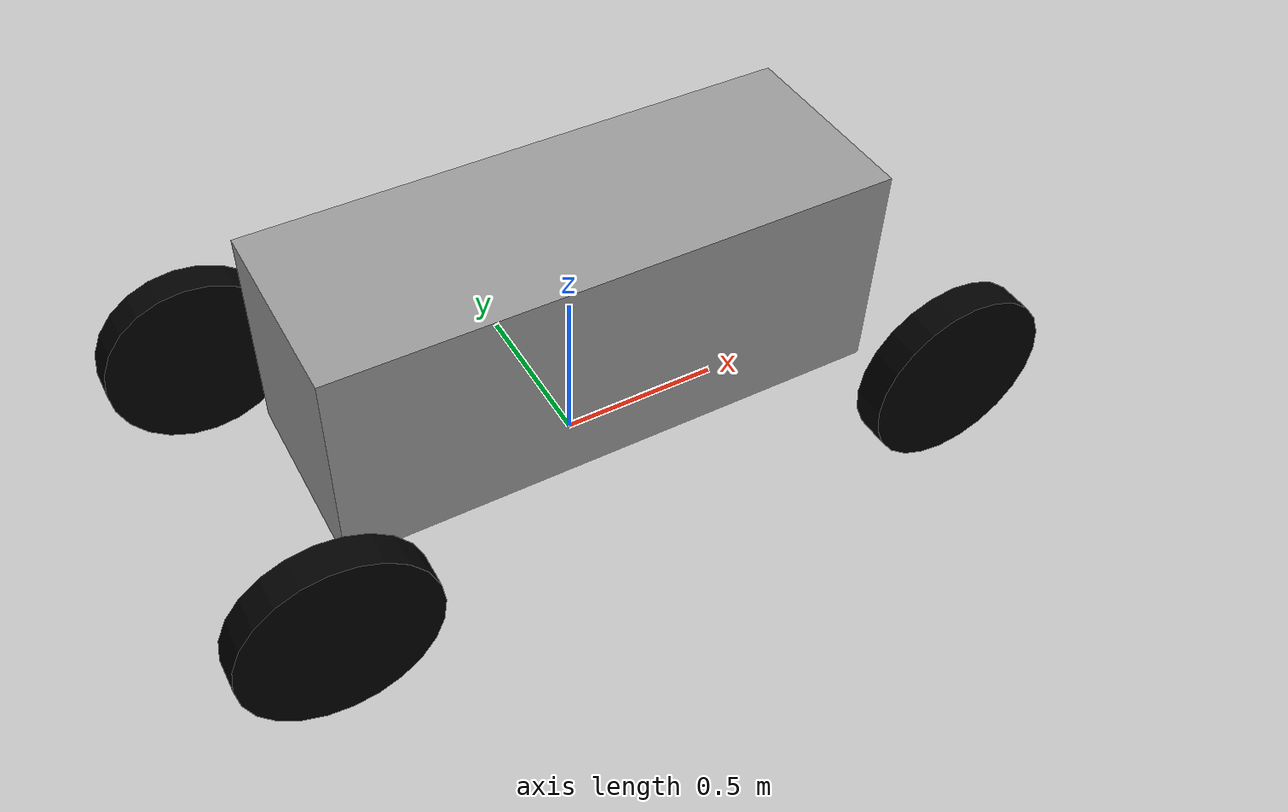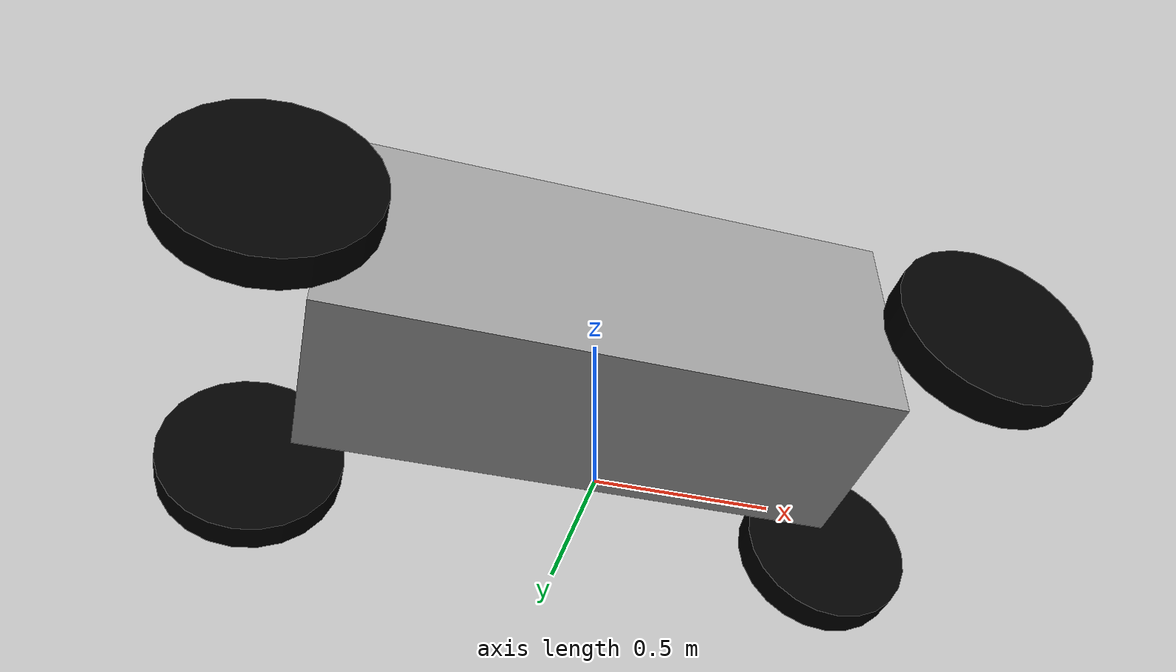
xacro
<?xml version="1.0"?>

<robot name="four_wheel_steering_robot" xmlns:xacro="http://www.ros.org/wiki/xacro">

  <xacro:include filename="$(find four_wheel_steering_controller)/test/urdf/chassis.xacro" />
  <xacro:include filename="$(find four_wheel_steering_controller)/test/urdf/wheel_steered.xacro" />

  <xacro:property name="M_PI" value="3.14159"/>

  <!-- Wheel Mounting Positions -->
  <xacro:property name="ground_clearance" value="0.19" />
  <xacro:property name="wheel_x_offset" value="0.0" />
  <xacro:property name="wheel_y_offset" value="0.0" />
  <!-- value="0.05"  change offset to 0 -->

  <xacro:chassis/>

  <!-- Wheel macros -->
  <xacro:wheel_steered wheel_prefix="front_left" parent_link="base_link" wheel_origin_y="${wheel_y_offset}" left_right="-1">
    <origin xyz="${wheelbase/2+wheel_x_offset} ${track/2-wheel_y_offset} ${-base_z_size/2 + wheel_radius - ground_clearance}" rpy="0 0 0" />
  </xacro:wheel_steered>
  <xacro:wheel_steered wheel_prefix="front_right" parent_link="base_link" wheel_origin_y="${-wheel_y_offset}" left_right="1">
    <origin xyz="${wheelbase/2+wheel_x_offset} ${-track/2+wheel_y_offset} ${-base_z_size/2 + wheel_radius - ground_clearance}" rpy="0 0 0" />
  </xacro:wheel_steered>
  <xacro:wheel_steered wheel_prefix="rear_left" parent_link="base_link" wheel_origin_y="${wheel_y_offset}" left_right="-1">
    <origin xyz="${-wheelbase/2+wheel_x_offset} ${track/2-wheel_y_offset} ${-base_z_size/2 + wheel_radius - ground_clearance}" rpy="0 0 0" />
  </xacro:wheel_steered>
  <xacro:wheel_steered wheel_prefix="rear_right" parent_link="base_link" wheel_origin_y="${-wheel_y_offset}" left_right="1">
    <origin xyz="${-wheelbase/2+wheel_x_offset} ${-track/2+wheel_y_offset} ${-base_z_size/2 + wheel_radius - ground_clearance}" rpy="0 0 0" />
  </xacro:wheel_steered>

  <!-- Gazebo plugin for ROS Control -->

<gazebo>
  <static>false</static>
  <plugin name="gazebo_ros_control" filename="libgazebo_ros_control.so">
    <robotSimType>gazebo_ros_control/DefaultRobotHWSim</robotSimType>
    <legacyModeNS>true</legacyModeNS>
  </plugin>
</gazebo>

</robot>

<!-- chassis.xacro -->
<robot xmlns:xacro="http://www.ros.org/wiki/xacro" name="chassis">
  <!-- Base Properties -->
    <xacro:property name="mass_base" value="10" />
  <xacro:property name="base_x_size" value="1.66000" />
  <xacro:property name="base_y_size" value="0.60000" />
  <xacro:property name="base_z_size" value="0.66000" />

  <xacro:property name="wheelbase" value="1.9" />
  <xacro:property name="track" value="1.1" />

  <xacro:macro name="chassis">
    <!-- Base footprint is on the ground under the robot -->
    <link name="base_footprint"/>

    <gazebo reference="base_link">
      <material>Gazebo/Grey</material>
    </gazebo>
    <!-- Base link is the center of the robot's bottom plate -->
    <link name="base_link">
      <visual>
        <origin xyz="0 0 0" rpy="0 0 0" />
        <geometry>
          <box size="${base_x_size} ${base_y_size} ${base_z_size}"/>
        </geometry>
        <material name="grey">
          <color rgba="0.6 0.6 0.6 1"/>
        </material>
      </visual>
      <collision>
        <geometry>
          <box size="${base_x_size} ${base_y_size} ${base_z_size}"/>
        </geometry>
      </collision>
    </link>
    <joint name="base_footprint_joint" type="fixed">
      <origin xyz="0 0 ${ground_clearance + base_z_size/2}" rpy="0 0 0" />
      <child link="base_link" />
      <parent link="base_footprint" />
    </joint>

    <!-- Interial link stores the robot's inertial information -->
    <link name="inertial_link">
      <inertial>
        <mass value="34" />
        <origin xyz="0 0 0" />
        <inertia ixx="${mass_base/12.0 * (base_y_size*base_y_size + base_z_size*base_z_size)}" ixy="0" ixz="0"
                 iyy="${mass_base/12.0 * (base_x_size*base_x_size + base_z_size*base_z_size)}" iyz="0"
                 izz="${mass_base/12.0 * (base_y_size*base_y_size + base_x_size*base_x_size)}" />
      </inertial>
    </link>

    <joint name="inertial_joint" type="fixed">
      <origin xyz="0 0 0" rpy="0 0 0" />
      <parent link="base_link" />
      <child link="inertial_link" />
    </joint>
  </xacro:macro>
</robot>

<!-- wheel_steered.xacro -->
<robot xmlns:xacro="http://www.ros.org/wiki/xacro" name="wheel_steered">

  <xacro:property name="steering_link_y" value="0.05" />
  <xacro:property name="steering_link_xz" value="0.1" />
  <xacro:property name="steering_link_mass" value="5.0" />

  <xacro:include filename="$(find four_wheel_steering_controller)/test/urdf/wheel.xacro" />

  <xacro:macro name="wheel_steered" params="wheel_prefix parent_link wheel_origin_y left_right *joint_origin ">
    <link name="${wheel_prefix}_steering">
      <visual>
        <origin xyz="0 ${-wheel_origin_y} 0" rpy="0 0 0"/>
        <geometry>
          <box size="0.05 ${steering_link_y} 0.05"/>
        </geometry>
        <material name="blue">
          <color rgba="0.2 0.2 0.6 1"/>
        </material>
      </visual>
      <inertial>
        <mass value="${steering_link_mass}" />
        <origin xyz="0 ${-wheel_origin_y} 0" />
        <inertia  ixx="${steering_link_mass/12.0 * (steering_link_y*steering_link_y + steering_link_xz*steering_link_xz)}" ixy="0" ixz="0"
                  iyy="${steering_link_mass/12.0 * (steering_link_xz*steering_link_xz + steering_link_xz*steering_link_xz)}" iyz="0"
                  izz="${steering_link_mass/12.0 * (steering_link_y*steering_link_y + steering_link_xz*steering_link_xz)}" />
      </inertial>
    </link>

    <joint name="${wheel_prefix}_steering_joint" type="revolute">
      <limit lower="${-M_PI/2}" upper="${M_PI/2}" effort="1000.0" velocity="5.0"/>
      <axis xyz="0 0 1"/>
      <parent link="${parent_link}"/>
      <child link="${wheel_prefix}_steering"/>
      <xacro:insert_block name="joint_origin"/>
    </joint>

    <transmission name="${wheel_prefix}_steering_trans" type="SimpleTransmission">
      <type>transmission_interface/SimpleTransmission</type>
      <actuator name="${wheel_prefix}_steering_motor">
        <hardwareInterface>hardware_interface/PositionJointInterface</hardwareInterface>
        <mechanicalReduction>1</mechanicalReduction>
      </actuator>
      <joint name="${wheel_prefix}_steering_joint">
        <hardwareInterface>hardware_interface/PositionJointInterface</hardwareInterface>
      </joint>
    </transmission>

    <xacro:wheel wheel_prefix="${wheel_prefix}" parent_link="${wheel_prefix}_steering" left_right="${left_right}">
      <origin xyz="0 ${wheel_origin_y} 0" rpy="0 0 0" />
    </xacro:wheel>
  </xacro:macro>

</robot>

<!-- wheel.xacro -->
<robot xmlns:xacro="http://www.ros.org/wiki/xacro" name="wheel">

  <!-- Wheel Properties -->
  <xacro:property name="wheel_length" value="0.1" />
  <xacro:property name="wheel_radius" value="0.28" />
  <xacro:property name="mass_wheel" value="5.0" />

  <xacro:macro name="wheel" params="wheel_prefix parent_link left_right *joint_origin">
    <gazebo reference="${wheel_prefix}_wheel_link">
      <material>Gazebo/Black</material>
    </gazebo>
		<link name="${wheel_prefix}_wheel_link">
			<inertial>
        <mass value="${mass_wheel}" />

				<origin xyz="0 0 0" rpy="0  0 0" />
        <inertia  ixx="${mass_wheel/4.0*(wheel_radius*wheel_radius+wheel_length*wheel_length/3.0)}" ixy="0" ixz="0"
                  iyy="${mass_wheel*wheel_radius*wheel_radius/2.0}" iyz="0"
                  izz="${mass_wheel/4.0*(wheel_radius*wheel_radius+wheel_length*wheel_length/3.0)}" />
      </inertial>
			<visual>
        <origin xyz="0 0 0" rpy="${left_right * M_PI/2}  0 0" />
				<geometry>
          <cylinder length="${wheel_length}" radius="${wheel_radius}"/>
				</geometry>
        <material name="black">
          <color rgba="0 0 0 1"/>
        </material>
			</visual>
			<collision>
				<origin xyz="0 0 0" rpy="${M_PI/2} 0 0" />
				<geometry>
					<cylinder length="${wheel_length}" radius="${wheel_radius}" />
				</geometry>
			</collision>
		</link>

<!--  do not use physical param    -->

		<gazebo reference="${wheel_prefix}_wheel_link">
			<mu1 value="1.0"/>
			<mu2 value="1.0"/>
			<kp value="10000000.0" />
			<kd value="1.0" />
			<fdir1 value="1 0 0"/>
		</gazebo>

		<physics type="ode">
			<gravity xyz="0 0 -9.8"/>
			<ode>
				<solver type="quick" dt="0.0001" iters="1000" sor="1.3"/>
				<constraints cfm="0.0" erp="0.1" contact_max_correcting_vel="10.0" contact_surface_layer="0.001"/>
			</ode>
		</physics>

		<joint name="${wheel_prefix}_wheel" type="continuous">
      <parent link="${parent_link}"/>
			<child link="${wheel_prefix}_wheel_link"/>
      <xacro:insert_block name="joint_origin"/>
			<axis xyz="0 1 0" rpy="0 0 0" />
		</joint>

		<transmission name="${wheel_prefix}_wheel_trans" type="SimpleTransmission">
			<type>transmission_interface/SimpleTransmission</type>
			<actuator name="${wheel_prefix}_wheel_motor">
				<mechanicalReduction>1</mechanicalReduction>
			</actuator>
			<joint name="${wheel_prefix}_wheel">
				<hardwareInterface>hardware_interface/VelocityJointInterface</hardwareInterface>
			</joint>
		</transmission>

	</xacro:macro>
</robot>
